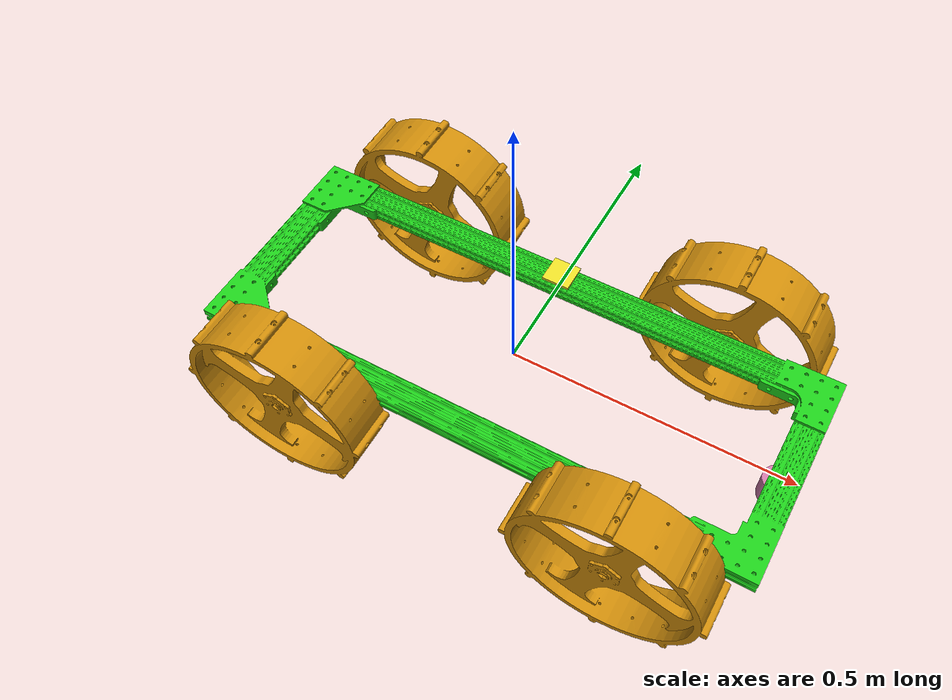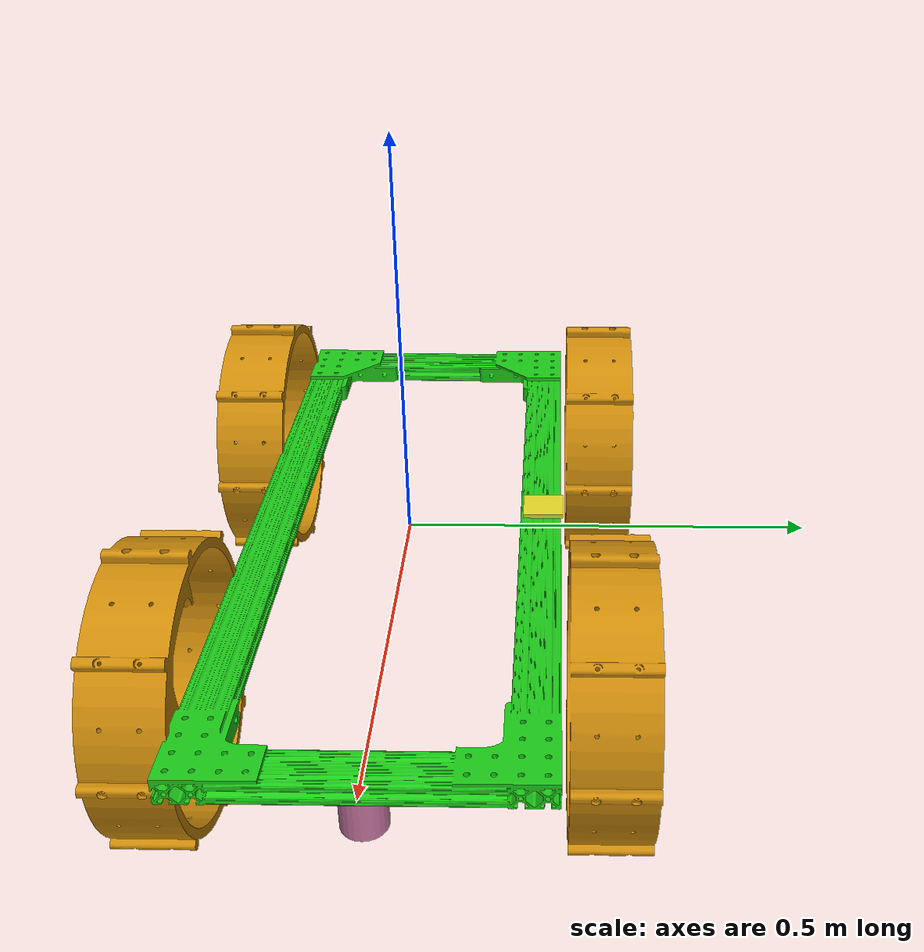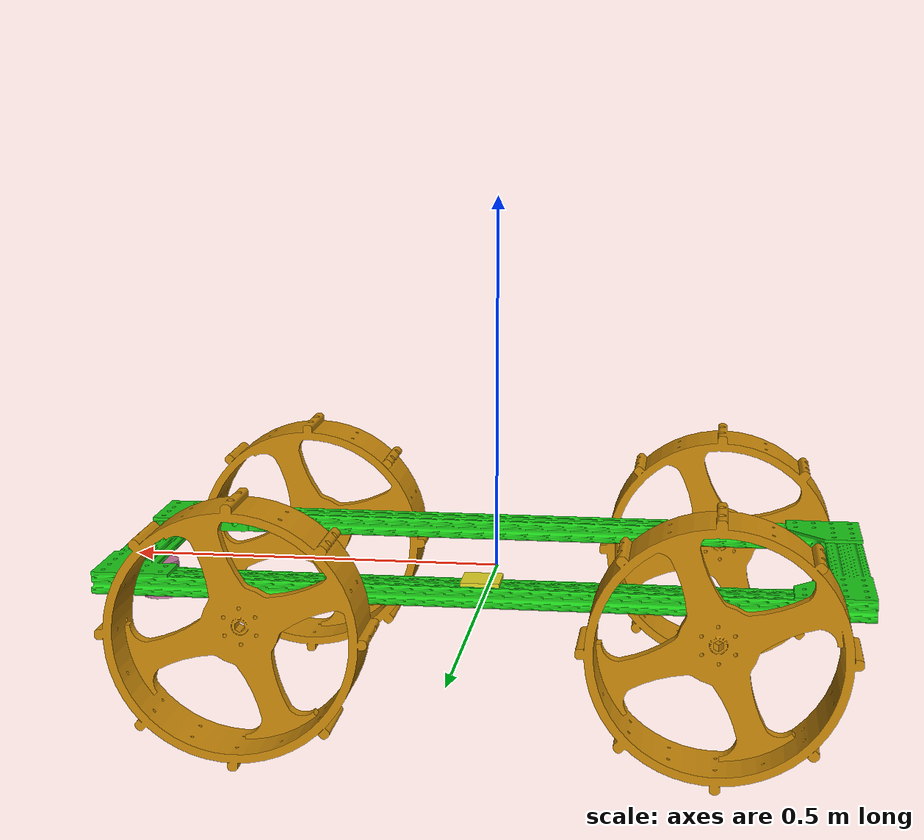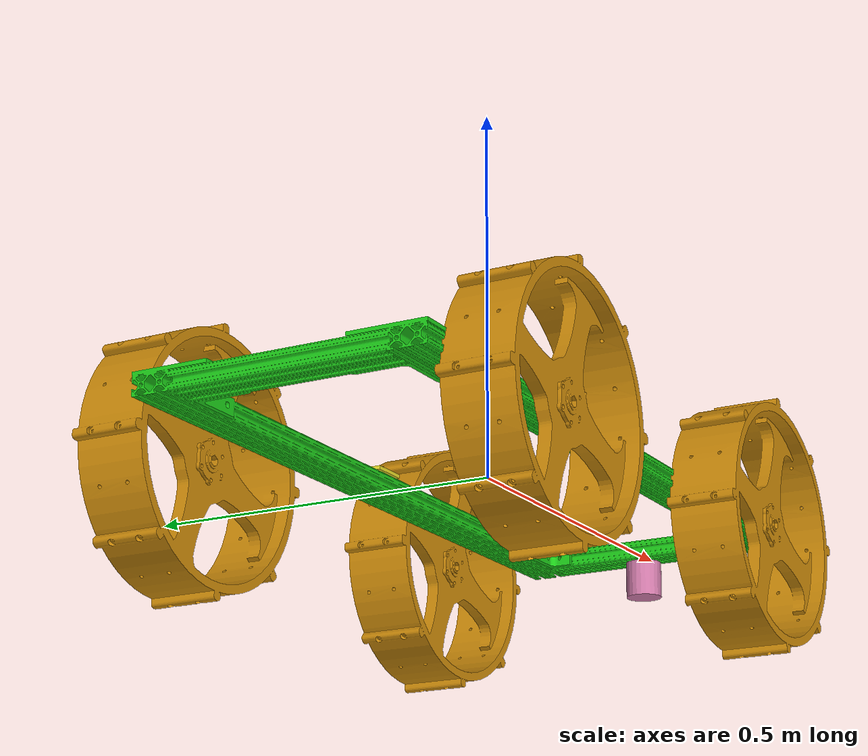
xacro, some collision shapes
<?xml version="1.0"?>
<robot xmlns:xacro="http://www.ros.org/wiki/xacro" name="moony">
<!-- note: units are meters, kilograms, and radians -->

<!-- THIS PLUGIN NEEDS TO BE FIRST -->
<gazebo>
    <plugin name="gazebo_ros_control" filename="libgazebo_ros_control.so">
        <robotNamespace>/moony</robotNamespace>
    </plugin>
</gazebo>

<!-- CONSTANTS -->
<xacro:property name="base_mass" value="4.11" />
<xacro:property name="base_height" value=".03" />

<!-- LINKS -->
    <link name="base_footprint" /> <!-- dummy prevents laser from publishing -->

    <joint name="base_joint" type="fixed">
     <origin xyz="0 0 0.01" rpy="0 0 0" />
     <parent link="base_footprint"/>
     <child link="base_link"/>
   </joint>

    <link name="base_link">
        <inertial>
            <origin rpy="0 0 0" xyz="0 0 0"/>
            <mass value="${base_mass}" />
            <inertia ixx="0.1" ixy="0" ixz="0" iyy="0.62" iyz="0" izz="0.52"/>
             <!-- values taken from solidworks  -->
        </inertial>
        <collision>
            <origin rpy="0 0 0" xyz="0 0 0"/> <!-- center of the wheel -->
            <geometry>
                <box size="1 .38 ${base_height}"/> -->
            </geometry>
        </collision>
        <visual>
            <origin rpy="0 0 0" xyz="0 0 0"/>
            <geometry>
                <mesh filename="package://moony_description/models/meshes/frame.dae"/>
            </geometry>
        </visual>
    </link>

<!-- Attach wheels -->
<xacro:include filename="$(find moony_gazebo)/gazebo/wheels.xacro" />
    <xacro:individual_wheel num="1" x="1.0" y="1.0" r="-1.0"/>
    <xacro:individual_wheel num="2" x="-1.0" y="1.0" r="-1.0"/>
    <xacro:individual_wheel num="3" x="1.0" y="-1.0" r="1.0"/>
    <xacro:individual_wheel num="4" x="-1.0" y="-1.0" r="1.0"/>

<!-- Attach sensors -->
 <xacro:include filename="$(find moony_description)/robot/Parts/mount_lidar.urdf.xacro" />
 <xacro:include filename="$(find moony_description)/robot/Parts/mount_imu.urdf.xacro" />

<!-- Include gazebo simulation parameters -->
<xacro:include filename="$(find moony_gazebo)/gazebo/skid_drive.xacro" />
<xacro:include filename="$(find moony_gazebo)/gazebo/sensors.xacro" />

</robot>

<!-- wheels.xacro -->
<robot xmlns:xacro="http://www.ros.org/wiki/xacro" name="moony">

<!-- y = width/2 of frame + wheel COG to wall + buffer -->
<!-- for XACRO math - SPACES matter -->

<xacro:property name="wheel_y" value="${(.38/2)+.04+.01}" />
<xacro:property name="wheel_collision_radius" value="0.17" /> <!-- also used in skid_drive.xacro-->

<xacro:property name="wheel_mesh" value="package://moony_description/models/meshes/wheel_left.dae" />

<xacro:macro name="individual_wheel" params="num x y r">
   <link name="wheel_${num}_link">
        <inertial>
            <origin rpy="0 0 0" xyz="0 0 0"/>
            <mass value="2" />
            <inertia ixx="0.02" ixy="0" ixz="0" iyy="0.02" iyz="0" izz="0.04"/>
             <!-- values taken from solidworks; the origin is the position of the part
                w.r.t its axes for the second moment of mass values  -->
        </inertial>

        <collision>
            <origin rpy="${radians(90)} 0 0" xyz="0 0 0"/> <!-- pre joint orientation -->
            <geometry>
                <cylinder radius="${wheel_collision_radius}" length="0.09"/>
            </geometry>
        </collision>

        <visual>
            <origin rpy="0 0 0" xyz="0 0 0"/> <!-- center of the wheel -->
            <geometry>
                <mesh filename="${wheel_mesh}"/>
            </geometry>
        </visual>
    </link>

    <joint name="wheel_${num}_joint" type="continuous">
        <parent link="base_link"/>
        <child link="wheel_${num}_link"/>
        <origin xyz="${x * 0.3} ${y * wheel_y} ${-0.02 - base_height/2}" rpy="0 0 0"/> <!-- joint location -->
        <limit effort="0.1" velocity="1"/>
        <axis xyz="0 1 0"/>
    </joint>

    <transmission name="wheel_tran_${num}">
        <type>transmission_interface/SimpleTransmission</type>
        <joint name="wheel_${num}_joint">
            <hardwareInterface>hardware_interface/VelocityJointInterface</hardwareInterface>
        </joint>
        <actuator name="wheel_motor_${num}">
            <hardwareInterface>VelocityJointInterface</hardwareInterface>
            <mechanicalReduction>1</mechanicalReduction>
        </actuator>
        <!-- previous interface: VelocityJointInterface , EffortJointInterface-->
    </transmission>
</xacro:macro>

</robot>

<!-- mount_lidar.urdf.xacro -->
<robot xmlns:xacro="http://www.ros.org/wiki/xacro" name="moony">

 <link name="lidar_link">
    <collision>
      <origin xyz="0 0 ${.05/2}" rpy="0 0 0"/>
      <geometry>
        <cylinder radius="${0.025}" length=".05"/>
      </geometry>
    </collision>
    <visual>
      <origin xyz="0 0 0" rpy="0 0 0"/>
      <geometry>
        <mesh filename="package://moony_description/models/meshes/lidar.dae"/>
      </geometry>
    </visual>
    <inertial>
      <origin xyz="0 0 0" rpy="0 0 0"/>
      <mass value=".077"/>
      <inertia
        ixx=".00007" ixy="0.0" ixz="0.0"
        iyy=".00003" iyz="0.0"
        izz=".00008"/>
    </inertial>
  </link>

    <joint name="lidar_joint" type="fixed">
        <parent link="base_link"/>
        <child link="lidar_link"/>
        <origin xyz=".47 0 ${-0.015 - 0.005/2 -0.001}" rpy="${radians(180)} 0 0"/> <!-- joint location - this may be the plane of the laser-->
    </joint>

</robot>

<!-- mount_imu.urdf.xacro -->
<robot xmlns:xacro="http://www.ros.org/wiki/xacro" name="moony">

 <link name="imu_link">
    <collision>
      <origin xyz="0 0 ${.05/2}" rpy="0 0 0"/>
      <geometry>
        <box size="0.05 0.05 0.005"/>
      </geometry>
    </collision>

    <visual>
      <origin xyz="0 0 0" rpy="0 0 0"/>
      <geometry>
        <box size="0.05 0.05 0.005"/>
      </geometry>
    </visual>

    <inertial>
      <origin xyz="0 0 0" rpy="0 0 0"/>
      <mass value=".03"/> <!-- made up -->
      <inertia
        ixx=".00002" ixy="0.0" ixz="0.0"
        iyy=".00002" iyz="0.0"
        izz=".00002"/> <!-- made up -->
    </inertial>
  </link>

    <joint name="imu_joint" type="fixed">
        <parent link="base_link"/>
        <child link="imu_link"/>
        <origin xyz="0 0.17 ${+0.015 + 0.005/2 +0.001}" rpy="0 0 0"/> <!-- joint location -->
    </joint>

</robot>
